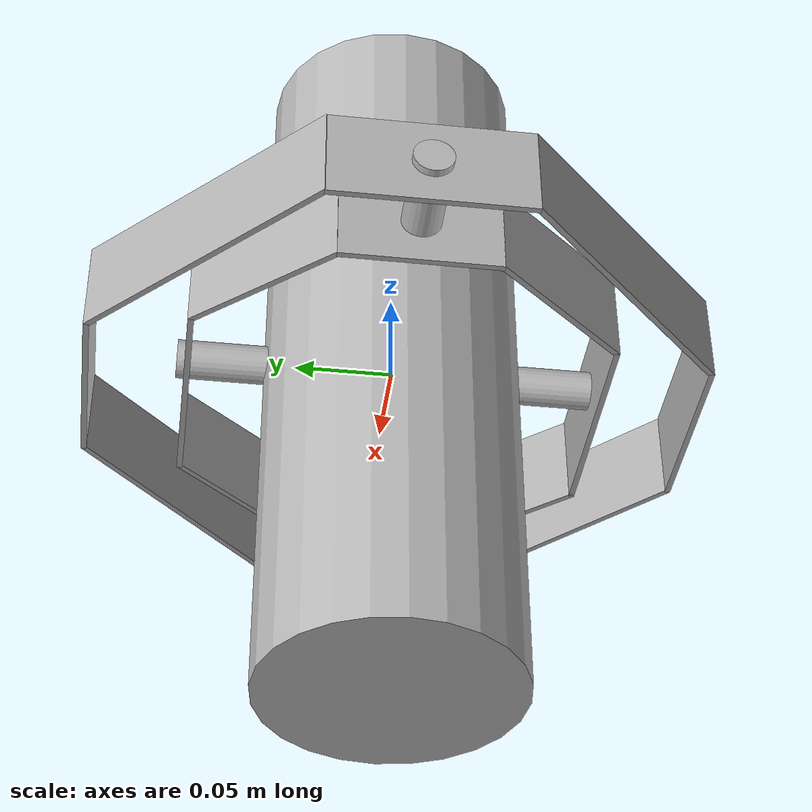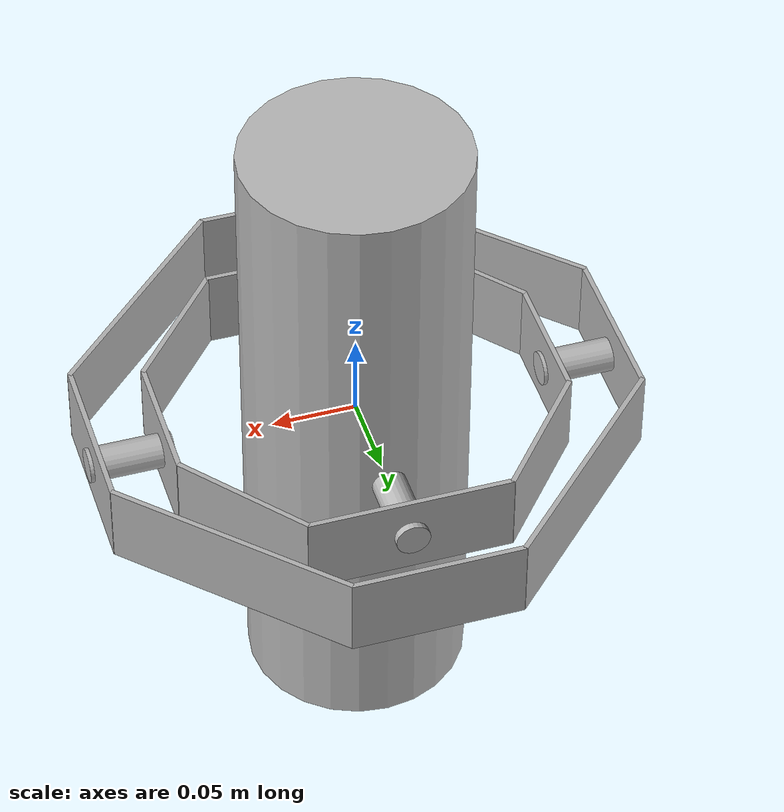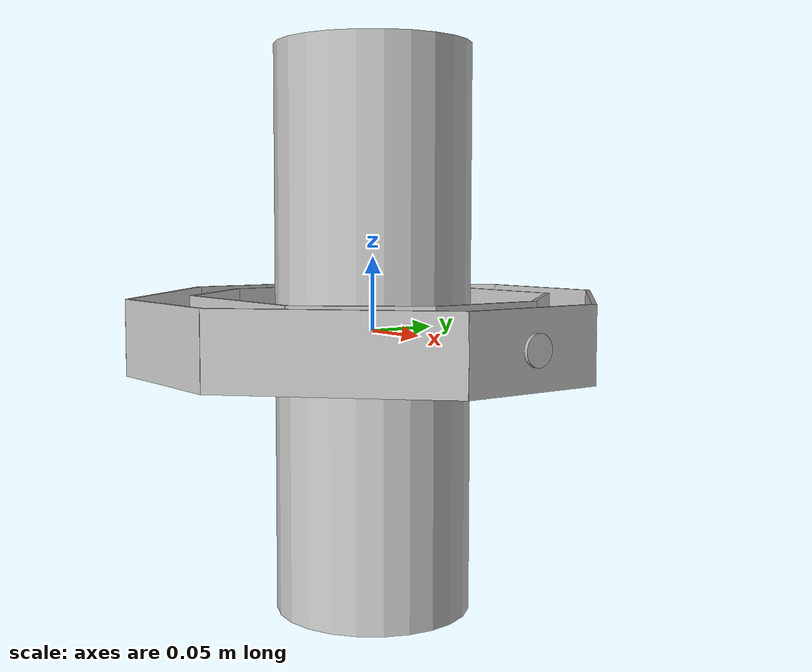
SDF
<?xml version='1.0'?>
<sdf version='1.7'>
  <model name='gimbal'>
    <!--Rings 3 and 2 cylinder links -->
    <link name='rings_3_2_rotate_3'>
      <inertial>
        <mass>1</mass>
        <inertia>
          <ixx>0.145833</ixx>
          <ixy>0</ixy>
          <ixz>0</ixz>
          <iyy>0.145833</iyy>
          <iyz>0</iyz>
          <izz>0.125</izz>
        </inertia>
        <pose>0 0 0 0 -0 0</pose>
      </inertial>
      <pose>0.134723 0.001268 1.6e-05 0.013562 1.5707 0.013273</pose>
      <visual name='visual'>
        <pose>0 0 0 0 -0 0</pose>
        <geometry>
          <cylinder>
            <radius>0.01</radius>
            <length>0.05</length>
          </cylinder>
        </geometry>
      </visual>
      <collision name='collision'>
        <pose>0 0 0 0 -0 0</pose>
        <geometry>
          <cylinder>
            <radius>0.01</radius>
            <length>0.05</length>
          </cylinder>
        </geometry>
      </collision>
    </link>
    <link name='rings_3_2_rotate_7'>
      <inertial>
        <mass>1</mass>
        <inertia>
          <ixx>0.145833</ixx>
          <ixy>0</ixy>
          <ixz>0</ixz>
          <iyy>0.145833</iyy>
          <iyz>0</iyz>
          <izz>0.125</izz>
        </inertia>
        <pose>0 0 0 0 -0 0</pose>
      </inertial>
      <pose>-0.136457 -2e-06 2e-06 -0.037735 1.5707 -0.038025</pose>
      <visual name='visual'>
        <pose>0 0 0 0 -0 0</pose>
        <geometry>
          <cylinder>
            <radius>0.01</radius>
            <length>0.05</length>
          </cylinder>
        </geometry>
      </visual>
      <collision name='collision'>
        <pose>0 0 0 0 -0 0</pose>
        <geometry>
          <cylinder>
            <radius>0.01</radius>
            <length>0.05</length>
          </cylinder>
        </geometry>
      </collision>
    </link>

    <!--Ring 2 Engine Cylinder Links-->
    <link name='rings_2_1_engine_rotate'>
      <inertial>
        <mass>0.212376</mass>
        <inertia>
          <ixx>4.57072e-05</ixx>
          <ixy>0</ixy>
          <ixz>0</ixz>
          <iyy>4.57072e-05</iyy>
          <iyz>0</iyz>
          <izz>1.06188e-05</izz>
        </inertia>
        <pose>0 0 0 0 -0 0</pose>
      </inertial>
      <pose>2e-06 0.0871 0 0.012567 1.5707 1.58298</pose>
      <visual name='visual'>
        <pose>0 0 0 0 -0 0</pose>
        <geometry>
          <cylinder>
            <radius>0.01</radius>
            <length>0.0477767</length>
          </cylinder>
        </geometry>
      </visual>
      <collision name='collision'>
        <pose>0 0 0 0 -0 0</pose>
        <geometry>
          <cylinder>
            <radius>0.01</radius>
            <length>0.047777</length>
          </cylinder>
        </geometry>
      </collision>
    </link>
    <link name='rings_2_5_engine_rotate'>
      <inertial>
        <mass>0.212376</mass>
        <inertia>
          <ixx>4.57072e-05</ixx>
          <ixy>0</ixy>
          <ixz>0</ixz>
          <iyy>4.57072e-05</iyy>
          <iyz>0</iyz>
          <izz>1.06188e-05</izz>
        </inertia>
        <pose>0 0 0 0 -0 0</pose>
      </inertial>
      <pose>-3.4e-05 -0.087257 -8e-06 0.012566 1.5707 1.58298</pose>
      <visual name='visual'>
        <pose>0 0 0 0 -0 0</pose>
        <geometry>
          <cylinder>
            <radius>0.01</radius>
            <length>0.0477767</length>
          </cylinder>
        </geometry>
      </visual>
      <collision name='collision'>
        <pose>0 0 0 0 -0 0</pose>
        <geometry>
          <cylinder>
            <radius>0.01</radius>
            <length>0.047777</length>
          </cylinder>
        </geometry>
      </collision>
    </link>

    <!--Engine-->
    <link name='engine'>
      <inertial>
        <mass>1</mass>
        <inertia>
          <ixx>0.145833</ixx>
          <ixy>0</ixy>
          <ixz>0</ixz>
          <iyy>0.145833</iyy>
          <iyz>0</iyz>
          <izz>0.125</izz>
        </inertia>
        <pose>0 0 0 0 -0 0</pose>
      </inertial>
      <pose>0 -1e-06 -0 0 -0 0</pose>
      <self_collide>1</self_collide>
      <visual name='visual'>
        <pose>0 0 0 0 -0 0</pose>
        <geometry>
          <cylinder>
            <radius>0.066</radius>
            <length>0.3805</length>
          </cylinder>
        </geometry>
      </visual>
      <collision name='collision'>
        <pose>0 0 0 0 -0 0</pose>
        <geometry>
          <cylinder>
            <radius>0.066</radius>
            <length>0.3805</length>
          </cylinder>
        </geometry>
      </collision>
    </link>

    <!--Ring 2 Links-->
    <link name='ring_2_side_1'>
      <inertial>
        <mass>1</mass>
        <inertia>
          <ixx>0.166667</ixx>
          <ixy>0</ixy>
          <ixz>0</ixz>
          <iyy>0.166667</iyy>
          <iyz>0</iyz>
          <izz>0.166667</izz>
        </inertia>
        <pose>0 0 0 0 -0 0</pose>
      </inertial>
      <pose>0 0.105398 -1e-06 1.5707 -0 0</pose>
      <visual name='visual'>
        <geometry>
          <box>
            <size>0.12 0.049 0.003</size>
          </box>
        </geometry>
        <material>
          <ambient>0.7 0.7 0.7 1</ambient>
        </material>
        <pose>0 0 0 0 -0 0</pose>
      </visual>
      <collision name='collision'>
        <pose>0 0 0 0 -0 0</pose>
        <geometry>
          <box>
            <size>0.12 0.049 0.003</size>
          </box>
        </geometry>
      </collision>
    </link>
    <link name='ring_2_side_2'>
      <inertial>
        <mass>1</mass>
        <inertia>
          <ixx>0.166667</ixx>
          <ixy>0</ixy>
          <ixz>0</ixz>
          <iyy>0.166667</iyy>
          <iyz>0</iyz>
          <izz>0.166667</izz>
        </inertia>
        <pose>0 0 0 0 -0 0</pose>
      </inertial>
      <pose>0.087224 0.072175 6.5e-05 1.5707 0 -0.87</pose>
      <visual name='visual'>
        <geometry>
          <box>
            <size>0.0877 0.049 0.003</size>
          </box>
        </geometry>
        <material>
          <ambient>0.7 0.7 0.7 1</ambient>
        </material>
        <pose>0 0 0 0 -0 0</pose>
      </visual>
      <collision name='collision'>
        <pose>0 0 0 0 -0 0</pose>
        <geometry>
          <box>
            <size>0.0877 0.049 0.003</size>
          </box>
        </geometry>
      </collision>
    </link>
    <link name='ring_2_side_3'>
      <inertial>
        <mass>1</mass>
        <inertia>
          <ixx>0.166667</ixx>
          <ixy>0</ixy>
          <ixz>0</ixz>
          <iyy>0.166667</iyy>
          <iyz>0</iyz>
          <izz>0.166667</izz>
        </inertia>
        <pose>0 0 0 0 -0 0</pose>
      </inertial>
      <pose>0.115194 0 0 1.5707 0 1.5707</pose>
      <visual name='visual'>
        <geometry>
          <box>
            <size>0.08 0.049 0.003</size>
          </box>
        </geometry>
        <material>
          <ambient>0.7 0.7 0.7 1</ambient>
        </material>
        <pose>0 0 0 0 -0 0</pose>
      </visual>
      <collision name='collision'>
        <pose>0 0 0 0 -0 0</pose>
        <geometry>
          <box>
            <size>0.08 0.049 0.003</size>
          </box>
        </geometry>
      </collision>
    </link>
    <link name='ring_2_side_4'>
      <inertial>
        <mass>1</mass>
        <inertia>
          <ixx>0.166667</ixx>
          <ixy>0</ixy>
          <ixz>0</ixz>
          <iyy>0.166667</iyy>
          <iyz>0</iyz>
          <izz>0.166667</izz>
        </inertia>
        <pose>0 0 0 0 -0 0</pose>
      </inertial>
      <pose>0.087329 -0.072496 0 1.5707 -0 0.87</pose>
      <visual name='visual'>
        <geometry>
          <box>
            <size>0.0877 0.049 0.003</size>
          </box>
        </geometry>
        <material>
          <ambient>0.7 0.7 0.7 1</ambient>
        </material>
        <pose>0 0 0 0 -0 0</pose>
      </visual>
      <collision name='collision'>
        <pose>0 0 0 0 -0 0</pose>
        <geometry>
          <box>
            <size>0.0877 0.049 0.003</size>
          </box>
        </geometry>
      </collision>
    </link>
    <link name='ring_2_side_5'>
      <inertial>
        <mass>1</mass>
        <inertia>
          <ixx>0.166667</ixx>
          <ixy>0</ixy>
          <ixz>0</ixz>
          <iyy>0.166667</iyy>
          <iyz>0</iyz>
          <izz>0.166667</izz>
        </inertia>
        <pose>0 0 0 0 -0 0</pose>
      </inertial>
      <pose>0 -0.105398 0 1.5707 -0 0</pose>
      <visual name='visual'>
        <geometry>
          <box>
            <size>0.12 0.049 0.003</size>
          </box>
        </geometry>
        <material>
          <ambient>0.7 0.7 0.7 1</ambient>
        </material>
        <pose>0 0 0 0 -0 0</pose>
      </visual>
      <collision name='collision'>
        <pose>0 0 0 0 -0 0</pose>
        <geometry>
          <box>
            <size>0.12 0.049 0.003</size>
          </box>
        </geometry>
      </collision>
    </link>
    <link name='ring_2_side_6'>
      <inertial>
        <mass>1</mass>
        <inertia>
          <ixx>0.166667</ixx>
          <ixy>0</ixy>
          <ixz>0</ixz>
          <iyy>0.166667</iyy>
          <iyz>0</iyz>
          <izz>0.166667</izz>
        </inertia>
        <pose>0 0 0 0 -0 0</pose>
      </inertial>
      <pose>-0.087288 -0.072437 6.5e-05 1.5707 0 -0.87</pose>
      <visual name='visual'>
        <geometry>
          <box>
            <size>0.0877 0.049 0.003</size>
          </box>
        </geometry>
        <material>
          <ambient>0.7 0.7 0.7 1</ambient>
        </material>
        <pose>0 0 0 0 -0 0</pose>
      </visual>
      <collision name='collision'>
        <pose>0 0 0 0 -0 0</pose>
        <geometry>
          <box>
            <size>0.0877 0.049 0.003</size>
          </box>
        </geometry>
      </collision>
    </link>
    <link name='ring_2_side_7'>
      <inertial>
        <mass>1</mass>
        <inertia>
          <ixx>0.166667</ixx>
          <ixy>0</ixy>
          <ixz>0</ixz>
          <iyy>0.166667</iyy>
          <iyz>0</iyz>
          <izz>0.166667</izz>
        </inertia>
        <pose>0 0 0 0 -0 0</pose>
      </inertial>
      <pose>-0.115194 0 0 1.5707 0 1.5707</pose>
      <visual name='visual'>
        <geometry>
          <box>
            <size>0.08 0.049 0.003</size>
          </box>
        </geometry>
        <material>
          <ambient>0.7 0.7 0.7 1</ambient>
        </material>
        <pose>0 0 0 0 -0 0</pose>
      </visual>
      <collision name='collision'>
        <pose>0 0 0 0 -0 0</pose>
        <geometry>
          <box>
            <size>0.08 0.049 0.003</size>
          </box>
        </geometry>
      </collision>
    </link>
    <link name='ring_2_side_8'>
      <inertial>
        <mass>1</mass>
        <inertia>
          <ixx>0.166667</ixx>
          <ixy>0</ixy>
          <ixz>0</ixz>
          <iyy>0.166667</iyy>
          <iyz>0</iyz>
          <izz>0.166667</izz>
        </inertia>
        <pose>0 0 0 0 -0 0</pose>
      </inertial>
      <pose>-0.087379 0.072581 0.000102 1.5707 -0 0.87</pose>
      <visual name='visual'>
        <geometry>
          <box>
            <size>0.0877 0.049 0.003</size>
          </box>
        </geometry>
        <material>
          <ambient>0.7 0.7 0.7 1</ambient>
        </material>
        <pose>0 0 0 0 -0 0</pose>
      </visual>
      <collision name='collision'>
        <pose>0 0 0 0 -0 0</pose>
        <geometry>
          <box>
            <size>0.0877 0.049 0.003</size>
          </box>
        </geometry>
      </collision>
    </link>
    <!--Ring 3 Links-->
    <link name='ring_3_side_1'>
      <inertial>
        <mass>1</mass>
        <inertia>
          <ixx>0.166667</ixx>
          <ixy>0</ixy>
          <ixz>0</ixz>
          <iyy>0.166667</iyy>
          <iyz>0</iyz>
          <izz>0.166667</izz>
        </inertia>
        <pose>0 0 0 0 -0 0</pose>
      </inertial>
      <pose>0 0.155903 -0 1.5707 -0 0</pose>
      <visual name='visual'>
        <geometry>
          <box>
            <size>0.1 0.049 0.003</size>
          </box>
        </geometry>
        <material>
          <ambient>0.7 0.7 0.7 1</ambient>
        </material>
        <pose>0 0 0 0 -0 0</pose>
      </visual>
      <collision name='collision'>
        <pose>0 0 0 0 -0 0</pose>
        <geometry>
          <box>
            <size>0.1 0.049 0.003</size>
          </box>
        </geometry>
      </collision>
    </link>
    <link name='ring_3_side_2'>
      <inertial>
        <mass>1</mass>
        <inertia>
          <ixx>0.166667</ixx>
          <ixy>0</ixy>
          <ixz>0</ixz>
          <iyy>0.166667</iyy>
          <iyz>0</iyz>
          <izz>0.166667</izz>
        </inertia>
        <pose>0 0 0 0 -0 0</pose>
      </inertial>
      <pose>0.102655 0.102372 6.2e-05 1.5707 -0 -0.78535</pose>
      <visual name='visual'>
        <geometry>
          <box>
            <size>0.15189 0.049 0.003</size>
          </box>
        </geometry>
        <material>
          <ambient>0.7 0.7 0.7 1</ambient>
        </material>
        <pose>0 0 0 0 -0 0</pose>
      </visual>
      <collision name='collision'>
        <pose>0 0 0 0 -0 0</pose>
        <geometry>
          <box>
            <size>0.15189 0.049 0.003</size>
          </box>
        </geometry>
      </collision>
    </link>
    <link name='ring_3_side_3'>
      <inertial>
        <mass>1</mass>
        <inertia>
          <ixx>0.166667</ixx>
          <ixy>0</ixy>
          <ixz>0</ixz>
          <iyy>0.166667</iyy>
          <iyz>0</iyz>
          <izz>0.166667</izz>
        </inertia>
        <pose>0 0 0 0 -0 0</pose>
      </inertial>
      <pose>0.155907 -0 -1e-06 1.5707 0 1.5707</pose>
      <visual name='visual'>
        <geometry>
          <box>
            <size>0.1 0.049 0.003</size>
          </box>
        </geometry>
        <material>
          <ambient>0.7 0.7 0.7 1</ambient>
        </material>
        <pose>0 0 0 0 -0 0</pose>
      </visual>
      <collision name='collision'>
        <pose>0 0 0 0 -0 0</pose>
        <geometry>
          <box>
            <size>0.1 0.049 0.003</size>
          </box>
        </geometry>
      </collision>
    </link>
    <link name='ring_3_side_4'>
      <inertial>
        <mass>1</mass>
        <inertia>
          <ixx>0.166667</ixx>
          <ixy>0</ixy>
          <ixz>0</ixz>
          <iyy>0.166667</iyy>
          <iyz>0</iyz>
          <izz>0.166667</izz>
        </inertia>
        <pose>0 0 0 0 -0 0</pose>
      </inertial>
      <pose>0.102713 -0.102474 3e-06 1.5707 -0 0.78535</pose>
      <visual name='visual'>
        <geometry>
          <box>
            <size>0.15189 0.049 0.003</size>
          </box>
        </geometry>
        <material>
          <ambient>0.7 0.7 0.7 1</ambient>
        </material>
        <pose>0 0 0 0 -0 0</pose>
      </visual>
      <collision name='collision'>
        <pose>0 0 0 0 -0 0</pose>
        <geometry>
          <box>
            <size>0.15189 0.049 0.003</size>
          </box>
        </geometry>
      </collision>
    </link>
    <link name='ring_3_side_5'>
      <inertial>
        <mass>1</mass>
        <inertia>
          <ixx>0.166667</ixx>
          <ixy>0</ixy>
          <ixz>0</ixz>
          <iyy>0.166667</iyy>
          <iyz>0</iyz>
          <izz>0.166667</izz>
        </inertia>
        <pose>0 0 0 0 -0 0</pose>
      </inertial>
      <pose>-0 -0.155903 0 1.5707 -0 0</pose>
      <visual name='visual'>
        <geometry>
          <box>
            <size>0.1 0.049 0.003</size>
          </box>
        </geometry>
        <material>
          <ambient>0.7 0.7 0.7 1</ambient>
        </material>
        <pose>0 0 0 0 -0 0</pose>
      </visual>
      <collision name='collision'>
        <pose>0 0 0 0 -0 0</pose>
        <geometry>
          <box>
            <size>0.1 0.049 0.003</size>
          </box>
        </geometry>
      </collision>
    </link>
    <link name='ring_3_side_6'>
      <inertial>
        <mass>1</mass>
        <inertia>
          <ixx>0.166667</ixx>
          <ixy>0</ixy>
          <ixz>0</ixz>
          <iyy>0.166667</iyy>
          <iyz>0</iyz>
          <izz>0.166667</izz>
        </inertia>
        <pose>0 0 0 0 -0 0</pose>
      </inertial>
      <pose>-0.102735 -0.102664 6.8e-05 1.5707 -0 -0.78535</pose>
      <visual name='visual'>
        <geometry>
          <box>
            <size>0.15189 0.049 0.003</size>
          </box>
        </geometry>
        <material>
          <ambient>0.7 0.7 0.7 1</ambient>
        </material>
        <pose>0 0 0 0 -0 0</pose>
      </visual>
      <collision name='collision'>
        <pose>0 0 0 0 -0 0</pose>
        <geometry>
          <box>
            <size>0.15189 0.049 0.003</size>
          </box>
        </geometry>
      </collision>
    </link>
    <link name='ring_3_side_7'>
      <inertial>
        <mass>1</mass>
        <inertia>
          <ixx>0.166667</ixx>
          <ixy>0</ixy>
          <ixz>0</ixz>
          <iyy>0.166667</iyy>
          <iyz>0</iyz>
          <izz>0.166667</izz>
        </inertia>
        <pose>0 0 0 0 -0 0</pose>
      </inertial>
      <pose>-0.155907 0 1e-06 1.5707 0 1.5707</pose>
      <visual name='visual'>
        <geometry>
          <box>
            <size>0.1 0.049 0.003</size>
          </box>
        </geometry>
        <material>
          <ambient>0.7 0.7 0.7 1</ambient>
        </material>
        <pose>0 0 0 0 -0 0</pose>
      </visual>
      <collision name='collision'>
        <pose>0 0 0 0 -0 0</pose>
        <geometry>
          <box>
            <size>0.1 0.049 0.003</size>
          </box>
        </geometry>
      </collision>
    </link>
    <link name='ring_3_side_8'>
      <inertial>
        <mass>1</mass>
        <inertia>
          <ixx>0.166667</ixx>
          <ixy>0</ixy>
          <ixz>0</ixz>
          <iyy>0.166667</iyy>
          <iyz>0</iyz>
          <izz>0.166667</izz>
        </inertia>
        <pose>0 0 0 0 -0 0</pose>
      </inertial>
      <pose>-0.102979 0.102601 9.9e-05 1.5707 -0 0.78535</pose>
      <visual name='visual'>
        <geometry>
          <box>
            <size>0.15189 0.049 0.003</size>
          </box>
        </geometry>
        <material>
          <ambient>0.7 0.7 0.7 1</ambient>
        </material>
        <pose>0 0 0 0 -0 0</pose>
      </visual>
      <collision name='collision'>
        <pose>0 0 0 0 -0 0</pose>
        <geometry>
          <box>
            <size>0.15189 0.049 0.003</size>
          </box>
        </geometry>
      </collision>
    </link>

    <!--Ring 2 Joints-->
    <joint name='ring_2_joint_1_2' type='fixed'>
      <parent>ring_2_side_1</parent>
      <child>ring_2_side_2</child>
      <pose>0 0 0 0 -0 0</pose>
    </joint>
    <joint name='ring_2_joint_2_3' type='fixed'>
      <parent>ring_2_side_2</parent>
      <child>ring_2_side_3</child>
      <pose>0 0 0 0 -0 0</pose>
    </joint>
    <joint name='ring_2_joint_3_4' type='fixed'>
      <parent>ring_2_side_3</parent>
      <child>ring_2_side_4</child>
      <pose>0 0 0 0 -0 0</pose>
    </joint>
    <joint name='ring_2_joint_4_5' type='fixed'>
      <parent>ring_2_side_4</parent>
      <child>ring_2_side_5</child>
      <pose>0 0 0 0 -0 0</pose>
    </joint>
    <joint name='ring_2_joint_5_6' type='fixed'>
      <parent>ring_2_side_5</parent>
      <child>ring_2_side_6</child>
      <pose>0 0 0 0 -0 0</pose>
    </joint>
    <joint name='ring_2_joint_6_7' type='fixed'>
      <parent>ring_2_side_6</parent>
      <child>ring_2_side_7</child>
      <pose>0 0 0 0 -0 0</pose>
    </joint>
    <joint name='ring_2_joint_7_8' type='fixed'>
      <parent>ring_2_side_7</parent>
      <child>ring_2_side_8</child>
      <pose>0 0 0 0 -0 0</pose>
    </joint>
    <joint name='ring_2_joint_8_1' type='fixed'>
      <parent>ring_2_side_8</parent>
      <child>ring_2_side_1</child>
      <pose>0 0 0 0 -0 0</pose>
    </joint>

    <!--Ring 3 Joints-->
    <joint name='ring_3_joint_1_2' type='fixed'>
      <parent>ring_3_side_1</parent>
      <child>ring_3_side_2</child>
      <pose>0 0 0 0 -0 0</pose>
    </joint>
    <joint name='ring_3_joint_2_3' type='fixed'>
      <parent>ring_3_side_2</parent>
      <child>ring_3_side_3</child>
      <pose>0 0 0 0 -0 0</pose>
    </joint>
    <joint name='ring_3_joint_3_4' type='fixed'>
      <parent>ring_3_side_3</parent>
      <child>ring_3_side_4</child>
      <pose>0 0 0 0 -0 0</pose>
    </joint>
    <joint name='ring_3_joint_4_5' type='fixed'>
      <parent>ring_3_side_4</parent>
      <child>ring_3_side_5</child>
      <pose>0 0 0 0 -0 0</pose>
    </joint>
    <joint name='ring_3_joint_5_6' type='fixed'>
      <parent>ring_3_side_5</parent>
      <child>ring_3_side_6</child>
      <pose>0 0 0 0 -0 0</pose>
    </joint>
    <joint name='ring_3_joint_6_7' type='fixed'>
      <parent>ring_3_side_6</parent>
      <child>ring_3_side_7</child>
      <pose>0 0 0 0 -0 0</pose>
    </joint>
    <joint name='ring_3_joint_7_8' type='fixed'>
      <parent>ring_3_side_7</parent>
      <child>ring_3_side_8</child>
      <pose>0 0 0 0 -0 0</pose>
    </joint>
    <joint name='ring_3_joint_8_1' type='fixed'>
      <parent>ring_3_side_8</parent>
      <child>ring_3_side_1</child>
      <pose>0 0 0 0 -0 0</pose>
    </joint>

    <!--Cylinder rotational joints between ring 2 and 3-->
    <joint name='ring_3_side_3_rotate_fixed' type='fixed'>
      <parent>ring_3_side_3</parent>
      <child>rings_3_2_rotate_3</child>
      <pose>0 0 0 0 -0 0</pose>
    </joint>
    <joint name='ring_3_side_7_rotate_fixed' type='fixed'>
      <parent>ring_3_side_7</parent>
      <child>rings_3_2_rotate_7</child>
      <pose>0 0 0 0 -0 0</pose>
    </joint>
    <joint name='rotate_ring_2_7' type='revolute'>
      <parent>rings_3_2_rotate_7</parent>
      <child>ring_2_side_7</child>
      <pose>0 0 0 0 -0 0</pose>
      <axis>
        <xyz>0 0 1</xyz>
      </axis>
    </joint>
    <joint name='rotate_ring_2_3' type='revolute'>
      <parent>rings_3_2_rotate_3</parent>
      <child>ring_2_side_3</child>
      <pose>0 0 0 0 -0 0</pose>
      <axis>
        <xyz>0 0 1</xyz>
      </axis>
    </joint>

   <!--Cylinder Joints between ring 2 and engine-->
    <joint name='ring_2_side_1_rotate_fixed' type='fixed'>
      <parent>ring_2_side_1</parent>
      <child>rings_2_1_engine_rotate</child>
      <pose>0 0 0 0 -0 0</pose>
    </joint>
    <joint name='ring_2_side_5_rotate_fixed' type='fixed'>
      <parent>ring_2_side_5</parent>
      <child>rings_2_5_engine_rotate</child>
      <pose>0 0 0 0 -0 0</pose>
    </joint>
    <joint name='engine_rotate_1' type='revolute'>
      <parent>rings_2_1_engine_rotate</parent>
      <child>engine</child>
      <pose>0 0 0 0 -0 0</pose>
      <axis>
        <xyz>-0 -1 -0</xyz>
      </axis>
    </joint>
    <joint name='engine_rotate_5' type='revolute'>
      <parent>rings_2_5_engine_rotate</parent>
      <child>engine</child>
      <pose>0 0 0 0 -0 0</pose>
      <axis>
        <xyz>-0 -1 -0</xyz>
      </axis>
    </joint>

  </model>
</sdf>
